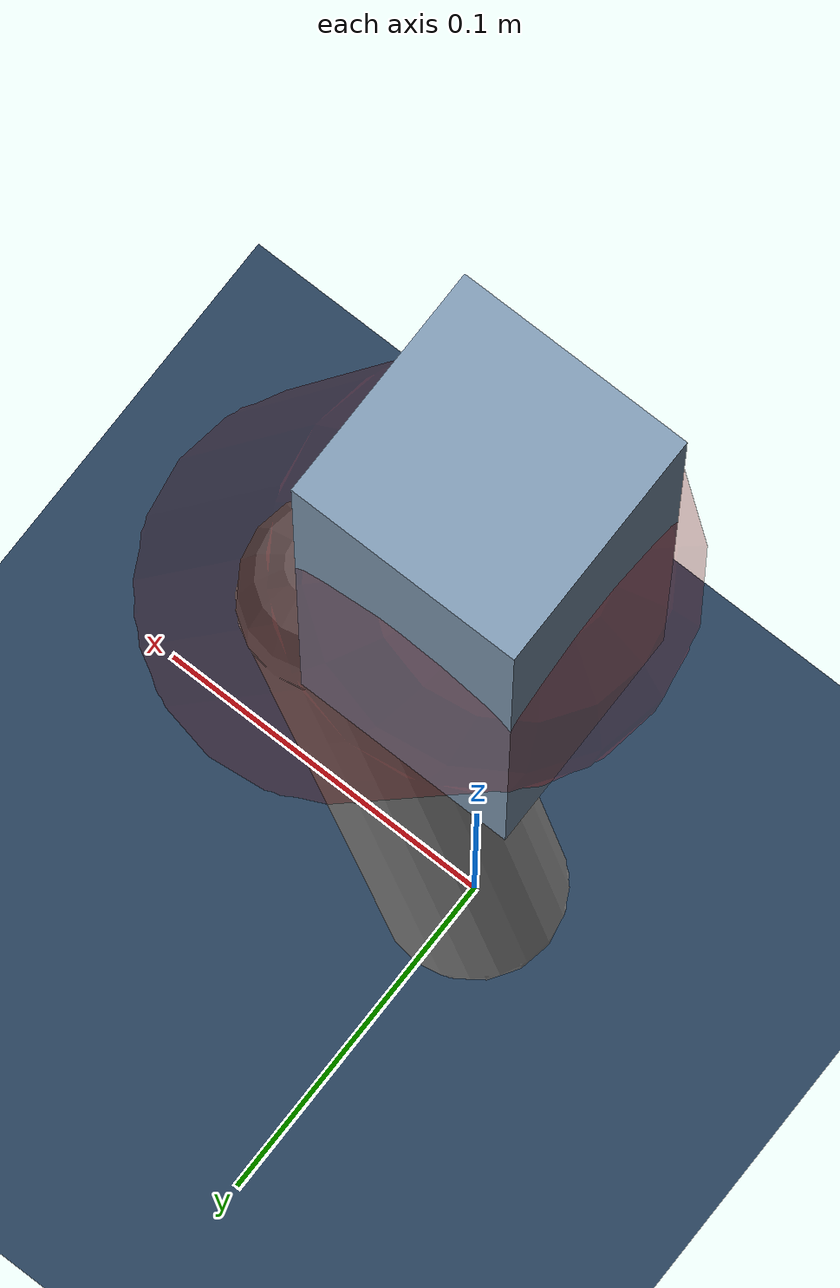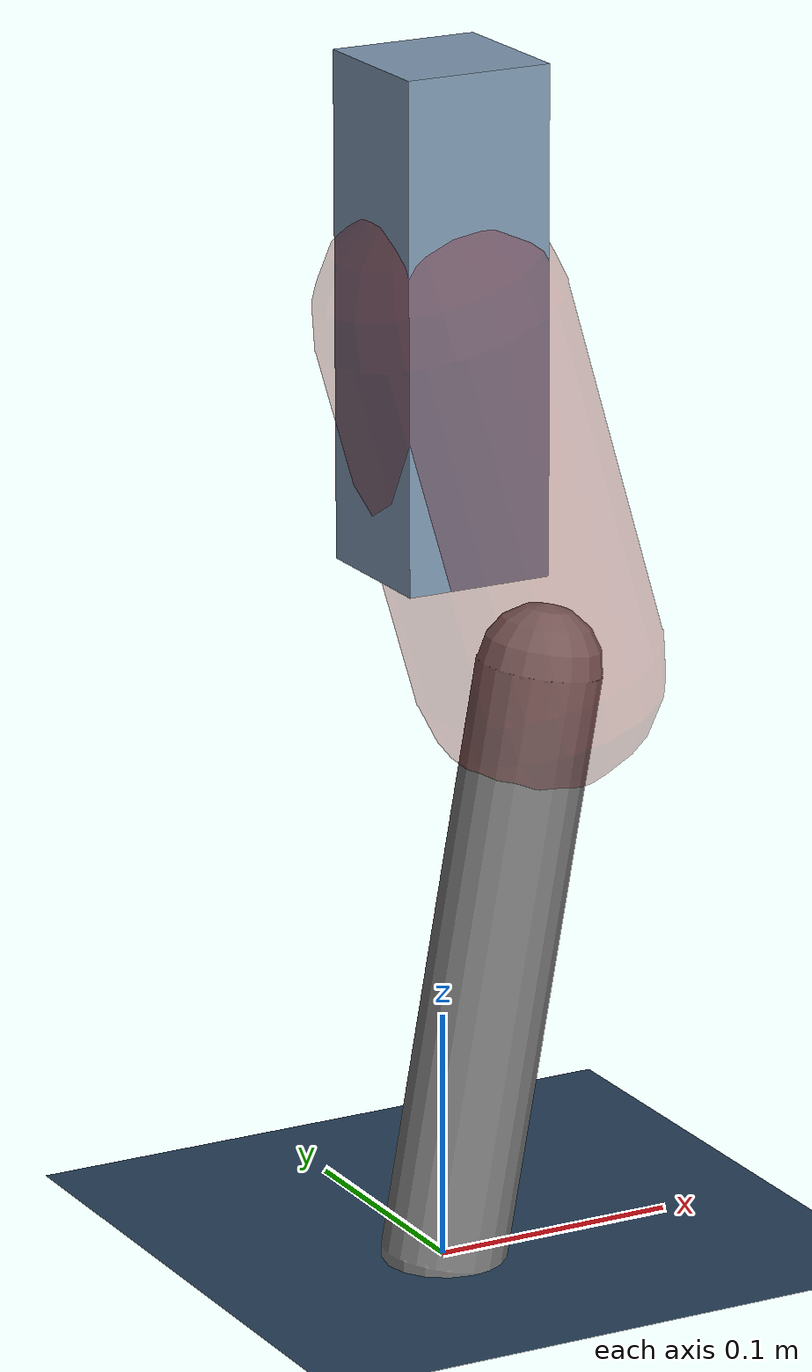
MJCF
<mujoco model="Hopper2D">
	<compiler inertiafromgeom="true" angle="radian" />
	<option timestep="0.001" integrator="implicit" cone="elliptic" solver="Newton" tolerance="1e-10" />

	<default>
		<geom contype="1" conaffinity="1" condim="3" friction="2 0.005 0.0001" solref="0.005 1" />
		<joint limited="true" damping="0.1" />
	</default>

	<asset>
		<texture name="skybox" type="skybox" builtin="gradient" rgb1=".4 .6 .8" rgb2="0 0 0" width="800" height="800" />
		<texture name="grid" type="2d" builtin="checker" rgb1=".1 .2 .3" rgb2=".2 .3 .4" width="300" height="300" mark="edge" markrgb=".2 .3 .4" />
		<material name="ground" texture="grid" texrepeat="1 1" texuniform="true" reflectance="0.1" />
		<material name="leg" rgba="0.5 0.6 0.7 1" />
	</asset>

	<worldbody>

		<geom name="floor" type="plane" size="5 5 0.25" material="ground" />

		<light directional="false" diffuse="0.8 0.8 0.8" specular="0.3 0.3 0.3" pos="0 0 2" dir="0 0 -1" />
		<light mode="targetbodycom" target="base" directional="false" diffuse="0.8 0.8 0.8" specular="0.3 0.3 0.3" pos="0 0 2" dir="0 0 -1" />

		<camera name="fixed" pos="0 -2 1" xyaxes="1 0 0 0 0 1" />
		<camera name="tracking" mode="trackcom" pos="0 -3 1" />

		<body name="root" pos="0 0 0.3828345018950604">
			<joint name="slide_x" type="slide" axis="1 0 0" range="-100 100" />
			<joint name="slide_z" type="slide" axis="0 0 1" range="0 10" />

			<body name="base" pos="0 0 0">
				<geom name="torso" type="box" size="0.03 0.03 0.1" mass="1.4780000000000002" material="leg" />

				<body name="link1" pos="0 0 0" euler="0 1.2859082636156496 0">
					<joint type="hinge" axis="0 -1 0" pos="0 0 0" name="hinge1" limited="true" range="-3.14 3.14" stiffness="0" damping="0.1" />
					<geom name="thigh" type="capsule" fromto="0 0 0 0.15250543128799146 0 0" size="0.05" rgba="0.5 0 0 0.3" mass="0.6144130350911795" />

					<body name="link2" pos="0.15250543128799146 0 0" euler="0 0.464193000869532 0">
						<joint type="hinge" axis="0 -1 0" pos="0 0 0" name="hinge2" limited="true" range="-3.14 3.14" stiffness="0" damping="0.1" />
						<geom name="shank" type="capsule" fromto="0 0 0 0.24032907060706898 0 0" size="0.025" mass="0.4345632564856552" />

					</body>
				</body>
			</body>
		</body>
	</worldbody>

	<actuator>
		<motor name="torque1" joint="hinge1" ctrlrange="-65.1431261172005 65.1431261172005" ctrllimited="true" gear="1" />
		<motor name="torque2" joint="hinge2" ctrlrange="-13.141411638588487 13.141411638588487" ctrllimited="true" gear="1" />
	</actuator>
</mujoco>
